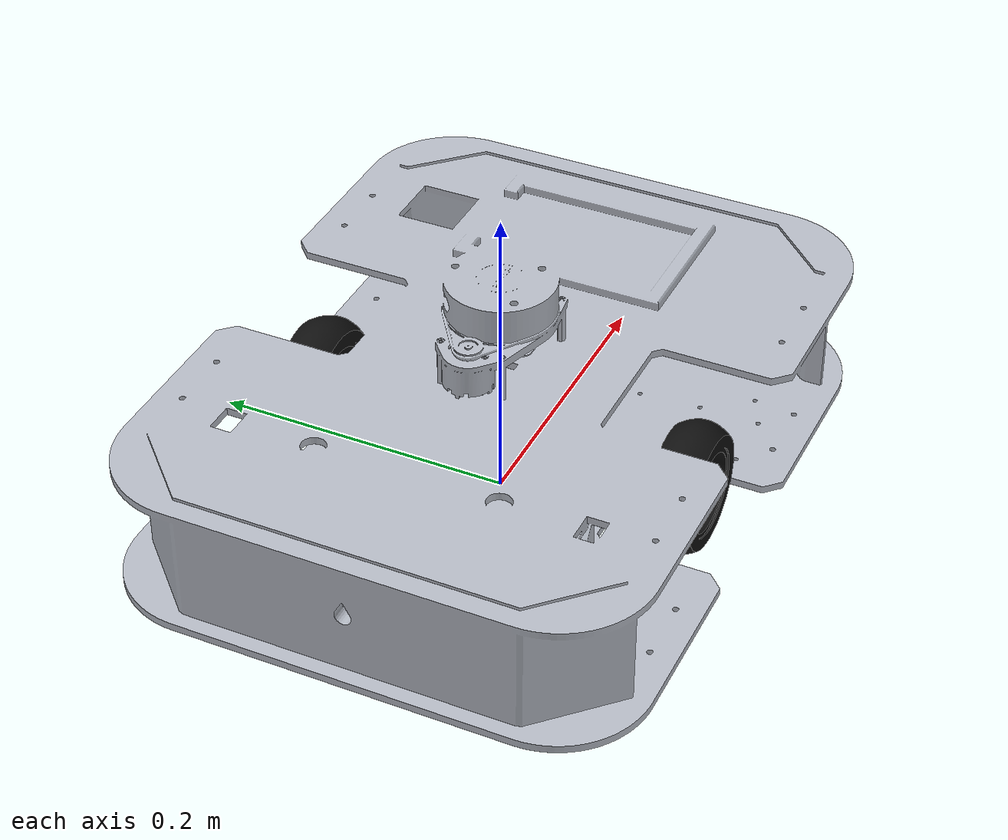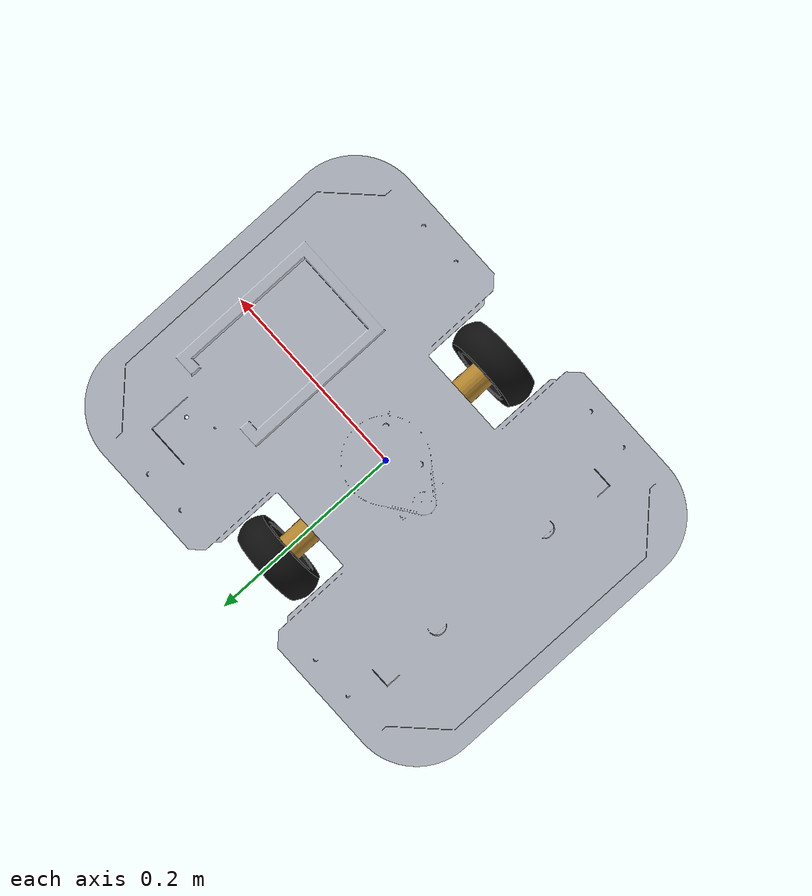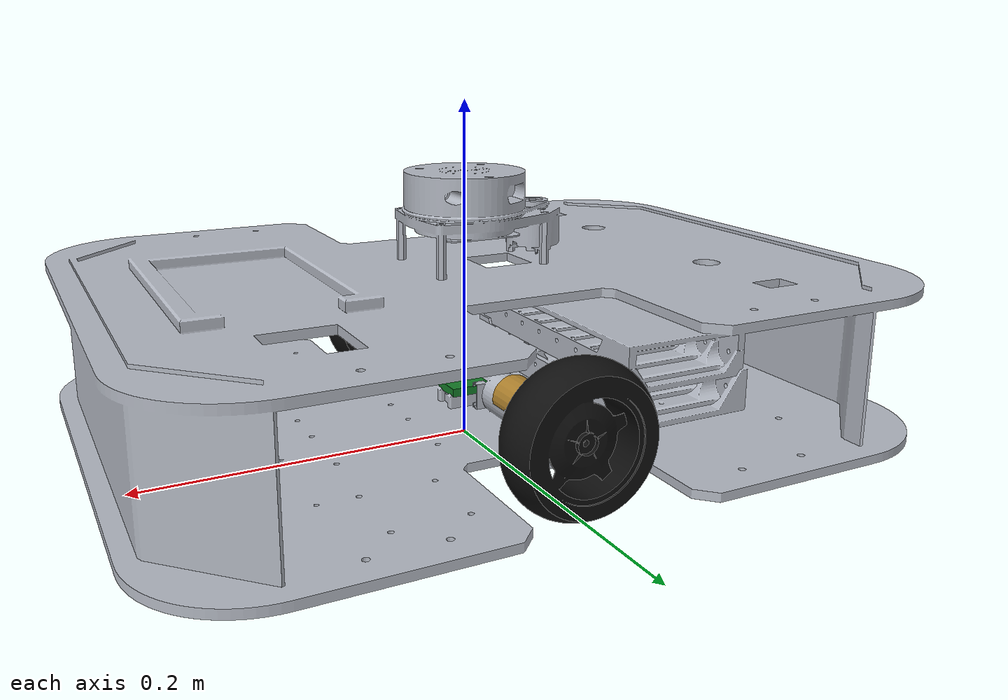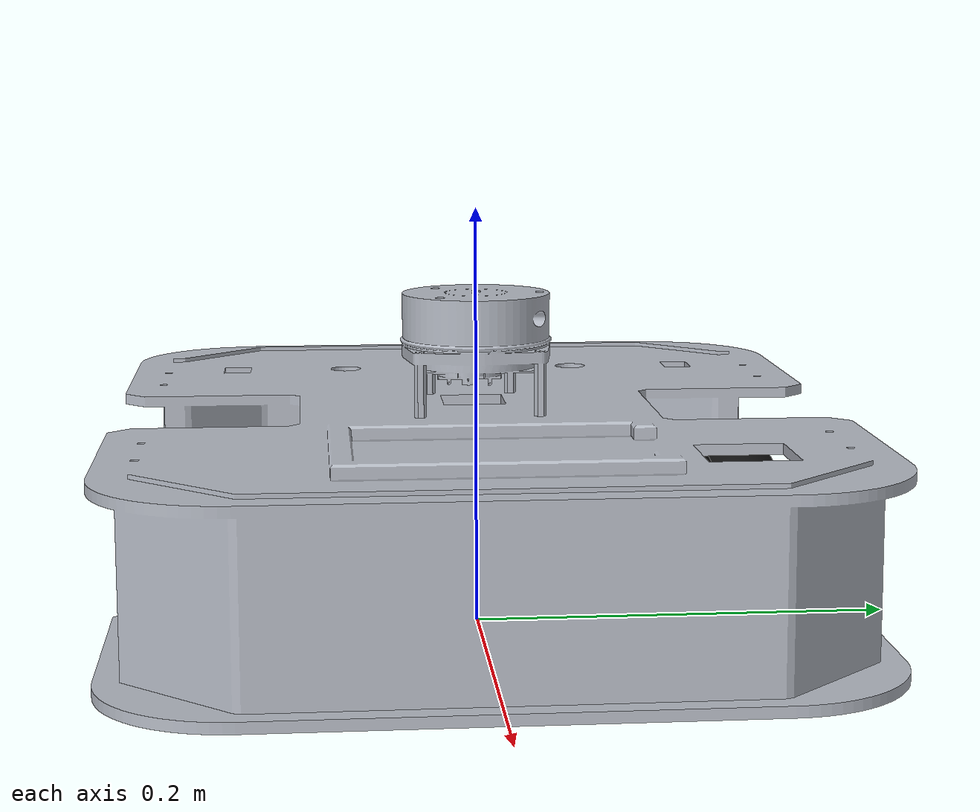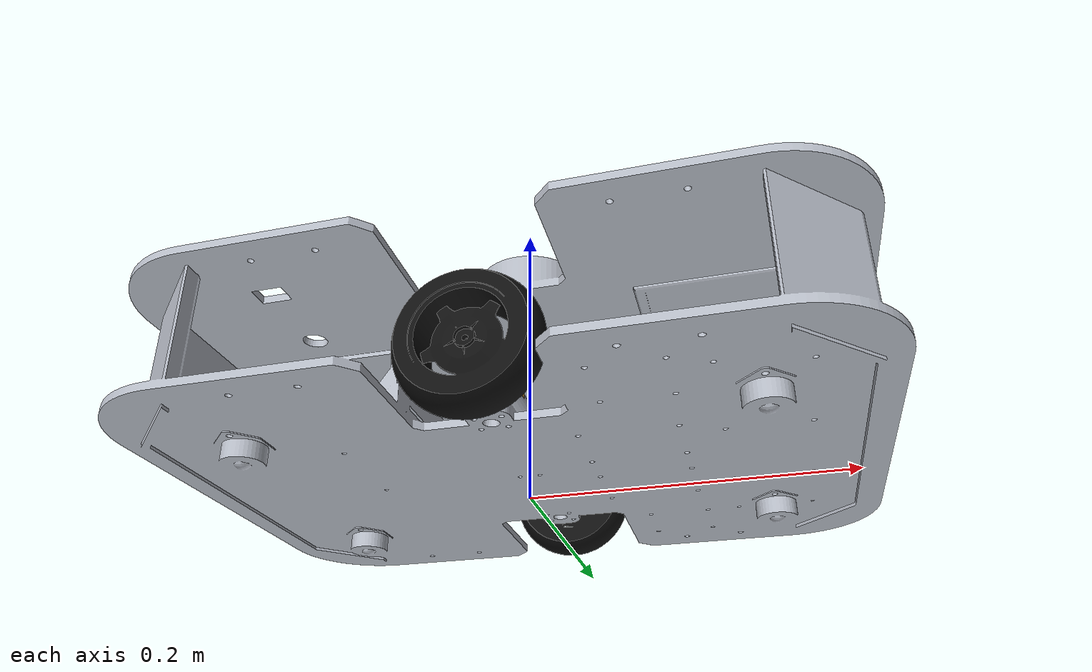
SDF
<?xml version="1.0"?>
<sdf version="1.9">
  <model name="vacuum_robot">
    <self_collide>false</self_collide>
    <allow_auto_disable>false</allow_auto_disable>

    <!-- The model frame is the geometric center on the floor. base_link is
         centered laterally at the 85 mm drive-wheel axle height. -->
    <link name="base_link">
      <pose>0 0 0.0425 0 0 0</pose>
      <inertial>
        <pose>-0.006074 -0.000536 0.016023 0 0 0</pose>
        <mass>4.6</mass>
        <inertia>
          <ixx>0.042710097</ixx><iyy>0.107573321</iyy><izz>0.137292434</izz>
          <ixy>0.000327650</ixy><ixz>-0.000920746</ixz><iyz>0.000111809</iyz>
        </inertia>
      </inertial>
      <!-- Compound chassis collision covers the 440 x 340 mm CAD envelope
           while leaving the low wheel pockets open around the axle. -->
      <collision name="lower_center_collision">
        <pose>0 0 0.0675 0 0 0</pose>
        <geometry><box><size>0.44 0.20 0.10</size></box></geometry>
        <surface>
          <friction><ode><mu>0.02</mu><mu2>0.02</mu2></ode></friction>
        </surface>
      </collision>
      <collision name="front_cross_collision">
        <pose>0.16 0 0.0675 0 0 0</pose>
        <geometry><box><size>0.12 0.34 0.10</size></box></geometry>
        <surface>
          <friction><ode><mu>0.02</mu><mu2>0.02</mu2></ode></friction>
        </surface>
      </collision>
      <collision name="rear_cross_collision">
        <pose>-0.16 0 0.0675 0 0 0</pose>
        <geometry><box><size>0.12 0.34 0.10</size></box></geometry>
        <surface>
          <friction><ode><mu>0.02</mu><mu2>0.02</mu2></ode></friction>
        </surface>
      </collision>
      <collision name="upper_deck_collision">
        <pose>0 0 0.0975 0 0 0</pose>
        <geometry><box><size>0.44 0.34 0.04</size></box></geometry>
        <surface>
          <friction><ode><mu>0.02</mu><mu2>0.02</mu2></ode></friction>
        </surface>
      </collision>
      <!-- Four 12 mm CAD ball supports touch the floor at x = +/-150 mm,
           y = +/-90 mm. They need collision but no extra visual because they
           are already contained in base_link.stl. -->
      <collision name="front_left_ball_collision">
        <pose>0.15 0.09 -0.0365 0 0 0</pose>
        <geometry><sphere><radius>0.006</radius></sphere></geometry>
        <surface><friction><ode><mu>0.005</mu><mu2>0.005</mu2></ode></friction></surface>
      </collision>
      <collision name="front_right_ball_collision">
        <pose>0.15 -0.09 -0.0365 0 0 0</pose>
        <geometry><sphere><radius>0.006</radius></sphere></geometry>
        <surface><friction><ode><mu>0.005</mu><mu2>0.005</mu2></ode></friction></surface>
      </collision>
      <collision name="rear_left_ball_collision">
        <pose>-0.15 0.09 -0.0365 0 0 0</pose>
        <geometry><sphere><radius>0.006</radius></sphere></geometry>
        <surface><friction><ode><mu>0.005</mu><mu2>0.005</mu2></ode></friction></surface>
      </collision>
      <collision name="rear_right_ball_collision">
        <pose>-0.15 -0.09 -0.0365 0 0 0</pose>
        <geometry><sphere><radius>0.006</radius></sphere></geometry>
        <surface><friction><ode><mu>0.005</mu><mu2>0.005</mu2></ode></friction></surface>
      </collision>
      <visual name="chassis_visual">
        <!-- CAD STL is in millimetres and uses an off-centre SolidWorks frame. -->
        <pose>-0.035315 0.200943 -0.211698 0 0 0</pose>
        <geometry>
          <mesh>
            <uri>model://vacuum_robot/meshes/base_link.stl</uri>
            <scale>0.001 0.001 0.001</scale>
          </mesh>
        </geometry>
        <material>
          <ambient>0.60 0.62 0.65 1</ambient><diffuse>0.72 0.74 0.78 1</diffuse>
        </material>
      </visual>

      <!-- The lidar housing is already part of the chassis CAD mesh. Only the
           simulated ray sensor is added here, at the reserved CAD frame. -->
      <sensor name="rplidar_a1m8" type="gpu_lidar">
        <pose>0 0 0.10892 0 0 0</pose>
        <always_on>true</always_on><visualize>true</visualize><update_rate>5.5</update_rate>
        <topic>/scan</topic><gz_frame_id>laser</gz_frame_id>
        <lidar>
          <scan><horizontal>
            <samples>1440</samples><resolution>1</resolution>
            <min_angle>-3.14159265359</min_angle><max_angle>3.14159265359</max_angle>
          </horizontal></scan>
          <range><min>0.15</min><max>12.0</max><resolution>0.01</resolution></range>
          <noise><type>gaussian</type><mean>0.0</mean><stddev>0.01</stddev></noise>
        </lidar>
      </sensor>

      <!-- BNO055 board shown in the lower CAD tray. The sensor frame in the
           original export is 29.7 mm above the floor. -->
      <visual name="imu_board_visual">
        <pose>0 0 -0.0128 0 0 0</pose>
        <geometry><box><size>0.025 0.020 0.005</size></box></geometry>
        <material><ambient>0.05 0.30 0.10 1</ambient><diffuse>0.08 0.50 0.16 1</diffuse></material>
      </visual>
      <sensor name="bno055_imu" type="imu">
        <pose>0 0 -0.0128 0 0 0</pose>
        <always_on>true</always_on><update_rate>100</update_rate>
        <topic>/imu/data</topic><gz_frame_id>imu_link</gz_frame_id>
        <imu>
          <angular_velocity>
            <x><noise type="gaussian"><mean>0</mean><stddev>0.002</stddev></noise></x>
            <y><noise type="gaussian"><mean>0</mean><stddev>0.002</stddev></noise></y>
            <z><noise type="gaussian"><mean>0</mean><stddev>0.002</stddev></noise></z>
          </angular_velocity>
          <linear_acceleration>
            <x><noise type="gaussian"><mean>0</mean><stddev>0.03</stddev></noise></x>
            <y><noise type="gaussian"><mean>0</mean><stddev>0.03</stddev></noise></y>
            <z><noise type="gaussian"><mean>0</mean><stddev>0.03</stddev></noise></z>
          </linear_acceleration>
        </imu>
      </sensor>

      <!-- Visual-only 68 x 25 mm GA25 bodies. Chassis inertia already
           includes the drive hardware, so no duplicate inertial/collision
           elements are introduced. -->
      <visual name="left_ga25_motor_visual">
        <pose>0 0.0934 0 1.57079632679 0 0</pose>
        <geometry><cylinder><radius>0.0125</radius><length>0.068</length></cylinder></geometry>
        <material><ambient>0.45 0.32 0.08 1</ambient><diffuse>0.70 0.52 0.18 1</diffuse></material>
      </visual>
      <visual name="right_ga25_motor_visual">
        <pose>0 -0.0934 0 1.57079632679 0 0</pose>
        <geometry><cylinder><radius>0.0125</radius><length>0.068</length></cylinder></geometry>
        <material><ambient>0.45 0.32 0.08 1</ambient><diffuse>0.70 0.52 0.18 1</diffuse></material>
      </visual>
    </link>

    <link name="base_footprint"><pose>0 0 0 0 0 0</pose></link>
    <joint name="base_footprint_joint" type="fixed">
      <parent>base_link</parent><child>base_footprint</child>
      <pose relative_to="base_link">0 0 -0.0425 0 0 0</pose>
    </joint>

    <!-- Two powered wheels. The complete CAD part is 42.4 mm wide, but the
         rolling tread is 30 mm wide. Link origins are at the tread planes. -->
    <link name="left_wheel">
      <pose>0 0.1274 0.0425 0 0 0</pose>
      <inertial>
        <pose>-0.000009503 -0.000153866 -0.000012903 0 0 0</pose>
        <mass>0.2</mass>
        <inertia>
          <ixx>0.000123851</ixx><iyy>0.000221573</iyy><izz>0.000123851</izz>
          <ixy>0</ixy><ixz>0</ixz><iyz>0</iyz>
        </inertia>
      </inertial>
      <collision name="collision">
        <pose>0 0 0 1.57079632679 0 0</pose>
        <geometry><cylinder><radius>0.0425</radius><length>0.0300</length></cylinder></geometry>
        <surface><friction><ode><mu>1.2</mu><mu2>0.05</mu2><fdir1>1 0 0</fdir1><slip1>0.0</slip1><slip2>0.02</slip2></ode></friction></surface>
      </collision>
      <visual name="visual">
        <pose>-0.0353034 0.0735430 -0.2091883 0 0 0</pose>
        <geometry><mesh><uri>model://vacuum_robot/meshes/left_wheel_link_1.stl</uri><scale>0.001 0.001 0.001</scale></mesh></geometry>
        <material><ambient>0.03 0.03 0.03 1</ambient><diffuse>0.06 0.06 0.06 1</diffuse></material>
      </visual>
    </link>
    <link name="right_wheel">
      <pose>0 -0.1274 0.0425 0 0 0</pose>
      <inertial>
        <pose>-0.000000013 0.000153935 0.000000639 0 0 0</pose>
        <mass>0.2</mass>
        <inertia>
          <ixx>0.000123851</ixx><iyy>0.000221573</iyy><izz>0.000123851</izz>
          <ixy>0</ixy><ixz>0</ixz><iyz>0</iyz>
        </inertia>
      </inertial>
      <collision name="collision">
        <pose>0 0 0 1.57079632679 0 0</pose>
        <geometry><cylinder><radius>0.0425</radius><length>0.0300</length></cylinder></geometry>
        <surface><friction><ode><mu>1.2</mu><mu2>0.05</mu2><fdir1>1 0 0</fdir1><slip1>0.0</slip1><slip2>0.02</slip2></ode></friction></surface>
      </collision>
      <visual name="visual">
        <pose>-0.0353129 0.3283430 -0.2091955 0 0 0</pose>
        <geometry><mesh><uri>model://vacuum_robot/meshes/right_wheel_link_1.stl</uri><scale>0.001 0.001 0.001</scale></mesh></geometry>
        <material><ambient>0.03 0.03 0.03 1</ambient><diffuse>0.06 0.06 0.06 1</diffuse></material>
      </visual>
    </link>
    <joint name="left_wheel_joint" type="revolute">
      <parent>base_link</parent><child>left_wheel</child>
      <pose relative_to="base_link">0 0.1274 0 0 0 0</pose>
      <axis><xyz>0 1 0</xyz><limit><effort>0.3530394</effort><velocity>13.6135681656</velocity></limit><dynamics><damping>0.03</damping></dynamics></axis>
    </joint>
    <joint name="right_wheel_joint" type="revolute">
      <parent>base_link</parent><child>right_wheel</child>
      <pose relative_to="base_link">0 -0.1274 0 0 0 0</pose>
      <axis><xyz>0 1 0</xyz><limit><effort>0.3530394</effort><velocity>13.6135681656</velocity></limit><dynamics><damping>0.03</damping></dynamics></axis>
    </joint>

    <plugin filename="gz-sim-diff-drive-system" name="gz::sim::systems::DiffDrive">
      <left_joint>left_wheel_joint</left_joint><right_joint>right_wheel_joint</right_joint>
      <wheel_separation>0.2834</wheel_separation><wheel_radius>0.0425</wheel_radius>
      <max_linear_acceleration>0.35</max_linear_acceleration><min_linear_acceleration>-0.45</min_linear_acceleration>
      <max_angular_acceleration>1.20</max_angular_acceleration><min_angular_acceleration>-1.20</min_angular_acceleration>
      <max_linear_velocity>0.30</max_linear_velocity><min_linear_velocity>-0.30</min_linear_velocity>
      <max_angular_velocity>0.80</max_angular_velocity><min_angular_velocity>-0.80</min_angular_velocity>
      <topic>/cmd_vel</topic><odom_topic>/odom</odom_topic><tf_topic>/tf</tf_topic>
      <frame_id>odom</frame_id><child_frame_id>base_link</child_frame_id><odom_publish_frequency>30</odom_publish_frequency>
    </plugin>
    <plugin filename="gz-sim-joint-state-publisher-system" name="gz::sim::systems::JointStatePublisher">
      <joint_name>left_wheel_joint</joint_name><joint_name>right_wheel_joint</joint_name>
      <topic>/joint_states</topic>
    </plugin>
    <!-- Physics ground truth is deliberately separate from wheel odometry. -->
    <plugin filename="gz-sim-odometry-publisher-system" name="gz::sim::systems::OdometryPublisher">
      <dimensions>2</dimensions><odom_publish_frequency>30</odom_publish_frequency>
      <odom_frame>world</odom_frame><robot_base_frame>base_link</robot_base_frame>
      <odom_topic>/ground_truth/odom</odom_topic>
      <tf_topic>/ground_truth/tf_gz</tf_topic>
    </plugin>
  </model>
</sdf>
